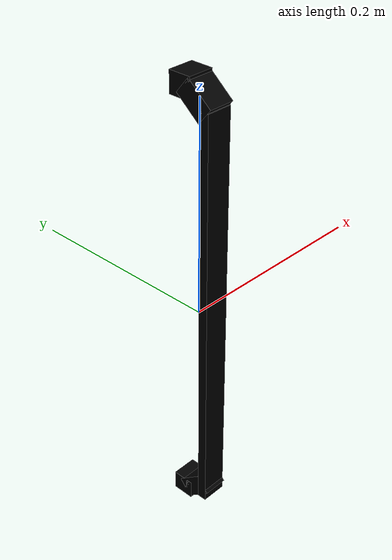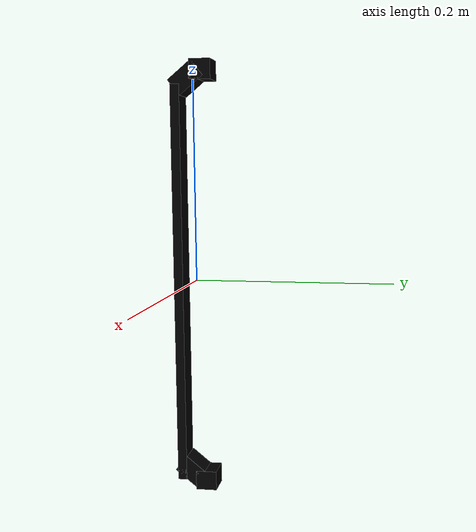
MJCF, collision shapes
<?xml version="1.0" ?>
<mujoco model="model">
    <compiler angle="radian"/>
    <asset>
        <mesh file="visuals/CabinetHandle023.obj" name="mesh"/>
        <texture file="visuals/T_BC001.png" name="tex" type="2d"/>
        <material name="mat" rgba="1 1 1 1.0" texture="tex" shininess="0.5" specular="1"/>
    </asset>
    <default>
        <default class="visual">
            <geom conaffinity="0" contype="0" group="1" type="mesh"/>
        </default>
        <default class="collision">
            <geom group="0" rgba="0 0 0 0"/>
        </default>
        <default class="spawn">
            <geom group="0" rgba="0 0 0 0" contype="0" conaffinity="0"/>
            <site group="0" rgba="0 0 0 0"/>
        </default>
    </default>
    <worldbody>
        <body>
            <body name="object">
                <geom mesh="mesh" type="mesh" solimp="0.998 0.998 0.001" solref="0.001 1" density="100" friction="0.95 0.3 0.1" class="visual" material="mat"/>
                <geom class="collision" type="box" pos="0.0 -0.015879454091191292 -0.0069800675846636295" size="0.012293832376599312 0.004582408349961042 0.20240648090839386" quat="1.0 0.0 0.0 0.0"/>
                <geom class="collision" type="box" pos="0.0 -0.005015884526073933 0.20140588283538818" size="0.012293831445276737 0.015019620768725872 0.009614109992980957" quat="0.9414644837379456 0.33711227774620056 0.0 0.0"/>
                <geom class="collision" type="box" pos="0.0 0.009430784732103348 0.20957331359386444" size="0.012293831445276737 0.010723741725087166 0.00986376404762268" quat="1.0 0.0 0.0 0.0" name="handle_connector"/>
                <geom class="collision" type="box" pos="0.0 0.009430784732103348 -0.2095780372619629" size="0.012293831445276737 0.010723741725087166 0.00986376404762268" quat="1.0 0.0 0.0 0.0"/>
                <geom class="collision" type="box" pos="0.0 -0.005015884526073933 -0.20141060650348663" size="0.012293831445276737 0.015019622631371021 0.009614109992980957" quat="0.9414644241333008 -0.33711230754852295 -0.0 0.0"/>
            </body>
        </body>
    </worldbody>
    <actuator/>
</mujoco>
